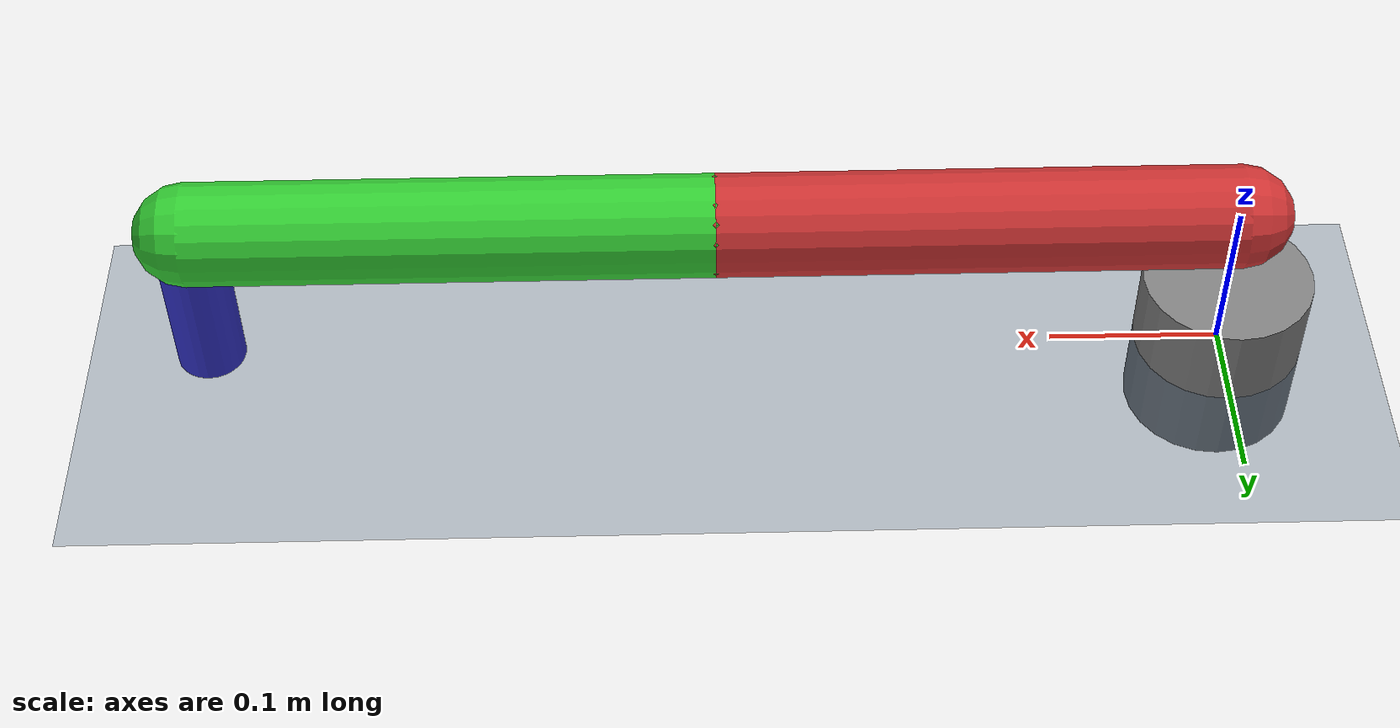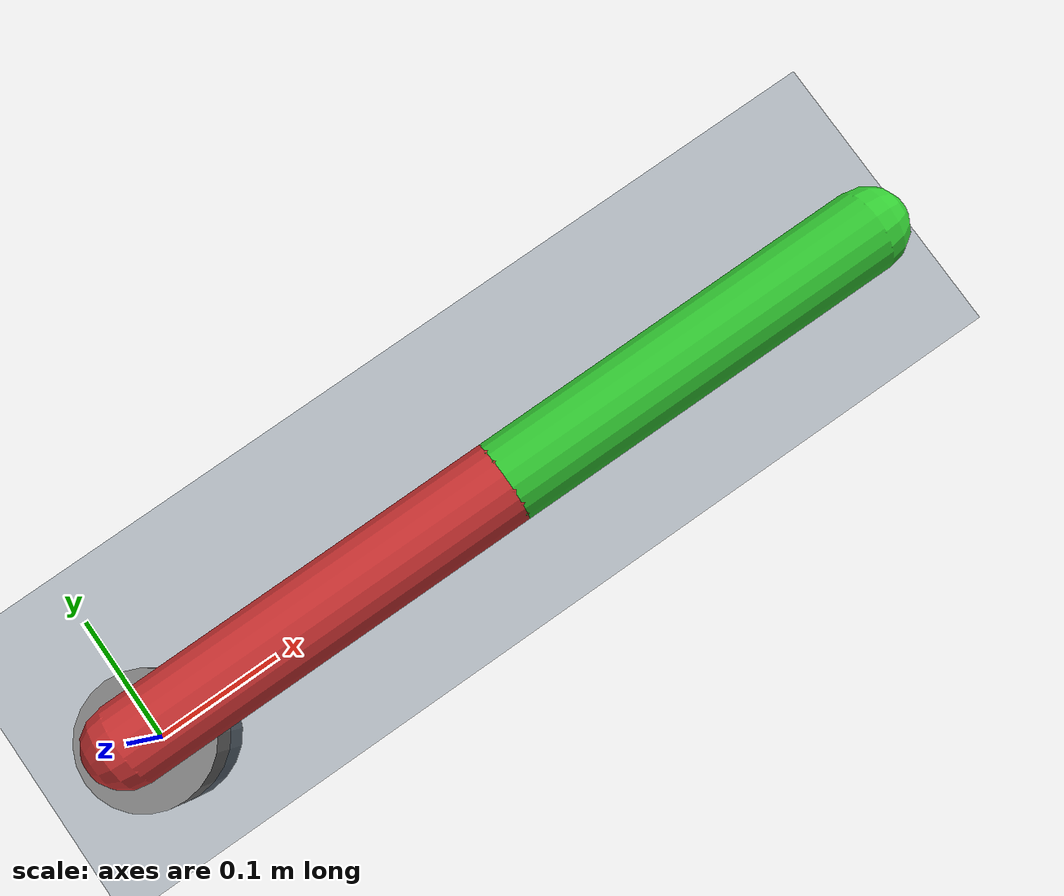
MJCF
<mujoco model="hello_world_scene">
  <!--
    State-of-the-Art MJCF Header
    - autolimits: automatically limits joints based on range
    - visual/statistic: useful for rendering quality
  -->
  <compiler angle="degree" meshdir="assets" autolimits="true"/>

  <option timestep="0.002" integrator="RK4">
    <flag warmstart="enable"/>
  </option>

  <!-- Visual settings for a clean, professional look -->
  <visual>
    <headlight diffuse="0.6 0.6 0.6" ambient="0.3 0.3 0.3" specular="0 0 0"/>
    <rgba haze="0.15 0.25 0.35 1"/>
    <global azimuth="150" elevation="-20"/>
  </visual>

  <statistic center="0 0 0.7" extent="0.8"/>

  <worldbody>
    <!-- A checkerboard floor -->
    <geom name="floor" type="plane" size="0 0 .05" material="grid"/>
    <light pos="0 0 1.5" dir="0 0 -1" directional="true"/>

    <!-- A simple robot arm base (static) -->
    <body name="base" pos="0 0 0">
      <geom type="cylinder" size=".05 .05" rgba=".5 .5 .5 1"/>

      <!-- Link 1 -->
      <body name="link1" pos="0 0 .1">
        <joint name="joint1" type="hinge" axis="0 0 1" range="-180 180" damping="1.0"/>
        <geom type="capsule" fromto="0 0 0 0.3 0 0" size=".03" rgba=".8 .2 .2 1"/>

        <!-- Link 2 -->
        <body name="link2" pos="0.3 0 0">
            <joint name="joint2" type="hinge" axis="0 1 0" range="-90 90" damping="1.0"/>
            <geom type="capsule" fromto="0 0 0 0.3 0 0" size=".03" rgba=".2 .8 .2 1"/>

            <!-- End Effector / Peg -->
            <body name="ee" pos="0.3 0 0">
                <geom type="cylinder" size=".02 .05" rgba=".2 .2 .8 1" pos="0 0 -0.05"/>
                <site name="tip" pos="0 0 -0.1" size="0.01" rgba="1 1 0 1"/>
            </body>
        </body>
      </body>
    </body>
  </worldbody>

  <actuator>
    <motor name="motor1" joint="joint1" gear="1"/>
    <motor name="motor2" joint="joint2" gear="1"/>
  </actuator>

  <asset>
    <texture type="2d" name="grid" builtin="checker" rgb1=".1 .2 .3" rgb2=".2 .3 .4" width="300" height="300" mark="edge" markrgb=".8 .8 .8"/>
    <material name="grid" texture="grid" texrepeat="2 2" texuniform="true" reflectance=".2"/>
  </asset>
</mujoco>
